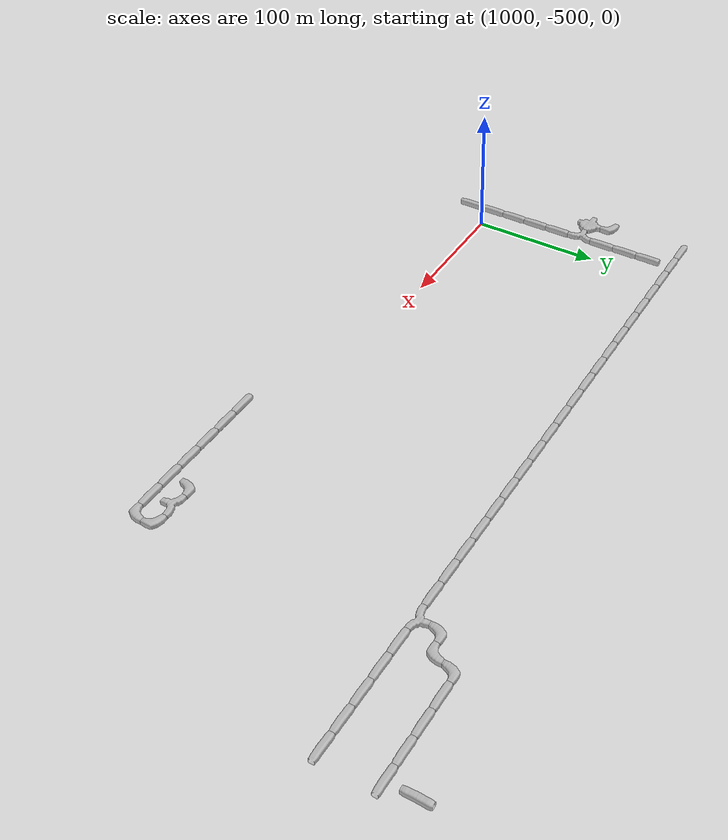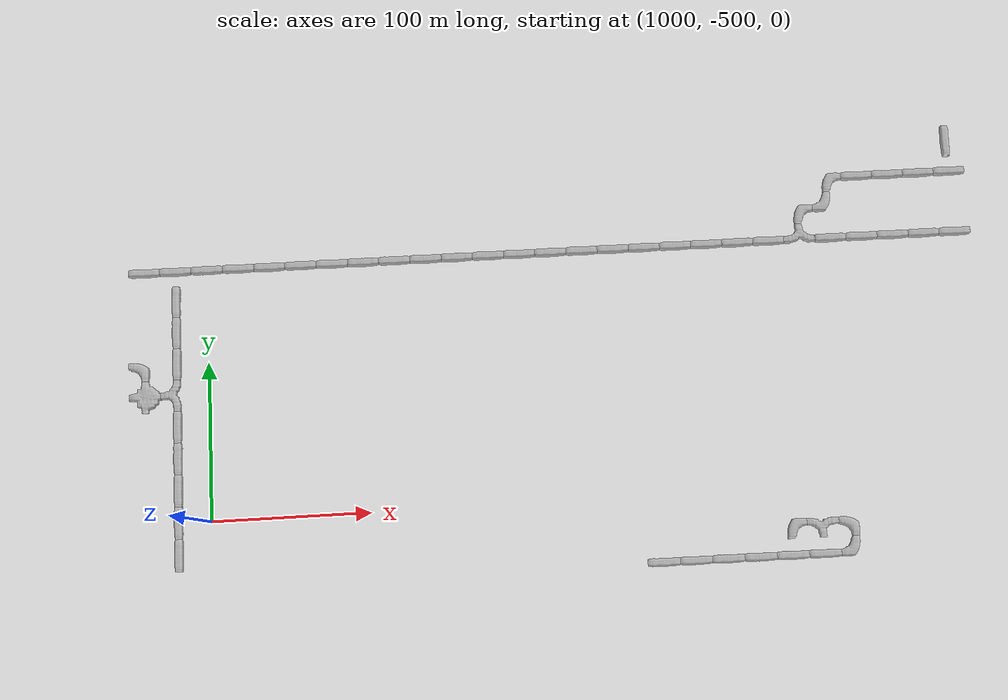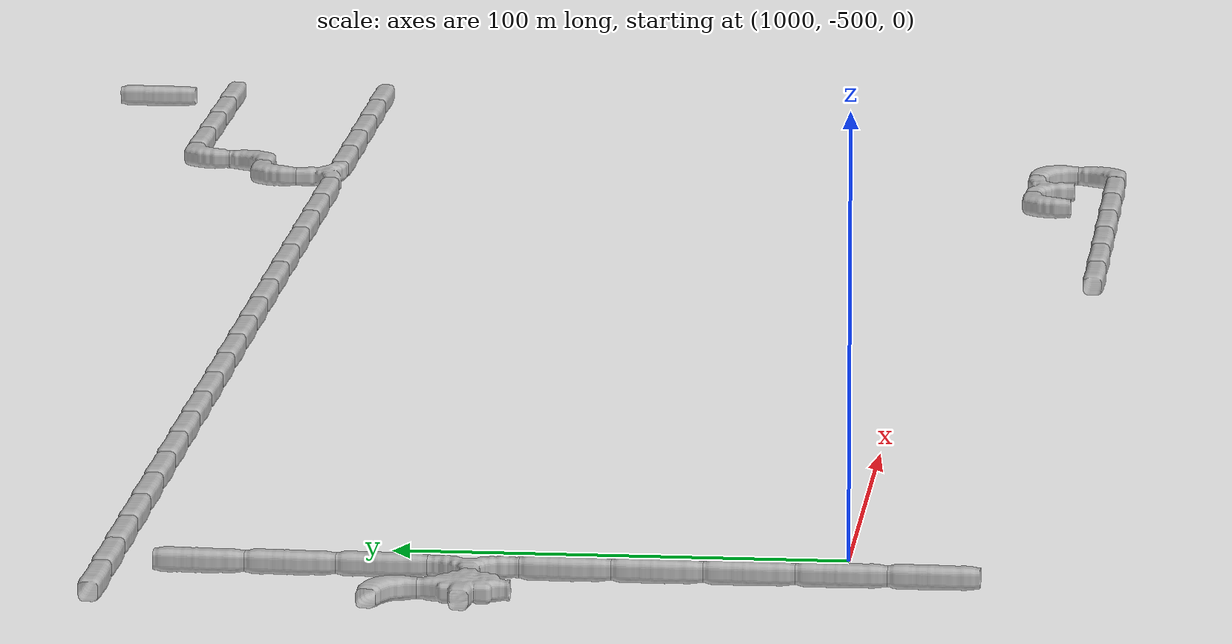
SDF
<sdf version="1.6">
 <world name="cave_32000_8">
  <include>
   <static>true</static>
   <name>cave_48_-17</name>
   <pose>960 -340 0 0 0 1.5707963267948966</pose>
   <uri>model://cave_straight_20m</uri>
  </include>
  <include>
   <static>true</static>
   <name>cave_49_-17</name>
   <pose>980 -340 0 0 0 1.5707963267948966</pose>
   <uri>model://cave_straight_20m</uri>
  </include>
  <include>
   <static>true</static>
   <name>cave_50_-17</name>
   <pose>1000 -340 0 0 0 1.5707963267948966</pose>
   <uri>model://cave_straight_20m</uri>
  </include>
  <include>
   <static>true</static>
   <name>cave_51_-17</name>
   <pose>1020 -340 0 0 0 1.5707963267948966</pose>
   <uri>model://cave_straight_20m</uri>
  </include>
  <include>
   <static>true</static>
   <name>cave_52_-17</name>
   <pose>1040 -340 0 0 0 1.5707963267948966</pose>
   <uri>model://cave_straight_20m</uri>
  </include>
  <include>
   <static>true</static>
   <name>cave_53_-17</name>
   <pose>1060 -340 0 0 0 1.5707963267948966</pose>
   <uri>model://cave_straight_20m</uri>
  </include>
  <include>
   <static>true</static>
   <name>cave_54_-17</name>
   <pose>1080 -340 0 0 0 1.5707963267948966</pose>
   <uri>model://cave_straight_20m</uri>
  </include>
  <include>
   <static>true</static>
   <name>cave_55_-17</name>
   <pose>1100 -340 0 0 0 1.5707963267948966</pose>
   <uri>model://cave_straight_20m</uri>
  </include>
  <include>
   <static>true</static>
   <name>cave_56_-17</name>
   <pose>1120 -340 0 0 0 1.5707963267948966</pose>
   <uri>model://cave_straight_20m</uri>
  </include>
  <include>
   <static>true</static>
   <name>cave_57_-17</name>
   <pose>1140 -340 0 0 0 1.5707963267948966</pose>
   <uri>model://cave_straight_20m</uri>
  </include>
  <include>
   <static>true</static>
   <name>cave_58_-17</name>
   <pose>1160 -340 0 0 0 1.5707963267948966</pose>
   <uri>model://cave_straight_20m</uri>
  </include>
  <include>
   <static>true</static>
   <name>cave_59_-17</name>
   <pose>1180 -340 0 0 0 1.5707963267948966</pose>
   <uri>model://cave_straight_20m</uri>
  </include>
  <include>
   <static>true</static>
   <name>cave_60_-17</name>
   <pose>1200 -340 0 0 0 1.5707963267948966</pose>
   <uri>model://cave_straight_20m</uri>
  </include>
  <include>
   <static>true</static>
   <name>cave_61_-17</name>
   <pose>1220 -340 0 0 0 1.5707963267948966</pose>
   <uri>model://cave_straight_20m</uri>
  </include>
  <include>
   <static>true</static>
   <name>cave_62_-17</name>
   <pose>1240 -340 0 0 0 1.5707963267948966</pose>
   <uri>model://cave_straight_20m</uri>
  </include>
  <include>
   <static>true</static>
   <name>cave_63_-17</name>
   <pose>1260 -340 0 0 0 1.5707963267948966</pose>
   <uri>model://cave_straight_20m</uri>
  </include>
  <include>
   <static>true</static>
   <name>cave_64_-17</name>
   <pose>1280 -340 0 0 0 1.5707963267948966</pose>
   <uri>model://cave_straight_20m</uri>
  </include>
  <include>
   <static>true</static>
   <name>cave_65_-17</name>
   <pose>1300 -340 0 0 0 1.5707963267948966</pose>
   <uri>model://cave_straight_20m</uri>
  </include>
  <include>
   <static>true</static>
   <name>cave_66_-17</name>
   <pose>1320 -340 0 0 0 1.5707963267948966</pose>
   <uri>model://cave_straight_20m</uri>
  </include>
  <include>
   <static>true</static>
   <name>cave_67_-17</name>
   <pose>1340 -340 0 0 0 1.5707963267948966</pose>
   <uri>model://cave_straight_20m</uri>
  </include>
  <include>
   <static>true</static>
   <name>cave_68_-17</name>
   <pose>1360 -340 0 0 0 1.5707963267948966</pose>
   <uri>model://cave_straight_20m</uri>
  </include>
  <include>
   <static>true</static>
   <name>cave_69_-17</name>
   <pose>1380 -340 0 0 0 0.0</pose>
   <uri>model://cave_3way_20m</uri>
  </include>
  <include>
   <static>true</static>
   <name>cave_70_-17</name>
   <pose>1400 -340 0 0 0 1.5707963267948966</pose>
   <uri>model://cave_straight_20m</uri>
  </include>
  <include>
   <static>true</static>
   <name>cave_71_-17</name>
   <pose>1420 -340 0 0 0 1.5707963267948966</pose>
   <uri>model://cave_straight_20m</uri>
  </include>
  <include>
   <static>true</static>
   <name>cave_72_-17</name>
   <pose>1440 -340 0 0 0 1.5707963267948966</pose>
   <uri>model://cave_straight_20m</uri>
  </include>
  <include>
   <static>true</static>
   <name>cave_73_-17</name>
   <pose>1460 -340 0 0 0 1.5707963267948966</pose>
   <uri>model://cave_straight_20m</uri>
  </include>
  <include>
   <static>true</static>
   <name>cave_74_-17</name>
   <pose>1480 -340 0 0 0 1.5707963267948966</pose>
   <uri>model://cave_straight_20m</uri>
  </include>
  <include>
   <static>true</static>
   <name>cave_69_-16</name>
   <pose>1380 -320 0 0 0 -1.5707963267948966</pose>
   <uri>model://cave_L_20m</uri>
  </include>
  <include>
   <static>true</static>
   <name>cave_70_-16</name>
   <pose>1400 -320 0 0 0 1.5707963267948966</pose>
   <uri>model://cave_L_20m</uri>
  </include>
  <include>
   <static>true</static>
   <name>cave_70_-15</name>
   <pose>1400 -300 0 0 0 -1.5707963267948966</pose>
   <uri>model://cave_L_20m</uri>
  </include>
  <include>
   <static>true</static>
   <name>cave_71_-15</name>
   <pose>1420 -300 0 0 0 1.5707963267948966</pose>
   <uri>model://cave_straight_20m</uri>
  </include>
  <include>
   <static>true</static>
   <name>cave_72_-15</name>
   <pose>1440 -300 0 0 0 1.5707963267948966</pose>
   <uri>model://cave_straight_20m</uri>
  </include>
  <include>
   <static>true</static>
   <name>cave_73_-15</name>
   <pose>1460 -300 0 0 0 1.5707963267948966</pose>
   <uri>model://cave_straight_20m</uri>
  </include>
  <include>
   <static>true</static>
   <name>cave_74_-15</name>
   <pose>1480 -300 0 0 0 1.5707963267948966</pose>
   <uri>model://cave_straight_20m</uri>
  </include>
  <include>
   <static>true</static>
   <name>cave_74_-14</name>
   <pose>1480 -280 0 0 0 0.0</pose>
   <uri>model://cave_straight_20m</uri>
  </include>
  <include>
   <static>true</static>
   <name>cave_48_-20</name>
   <pose>960 -400 0 0 0 3.141592653589793</pose>
   <uri>model://cave_L_20m</uri>
  </include>
  <include>
   <static>true</static>
   <name>cave_48_-21</name>
   <pose>960 -420 0 0 0 -1.5707963267948966</pose>
   <uri>model://cave_4way_20m</uri>
  </include>
  <include>
   <static>true</static>
   <name>cave_49_-21</name>
   <pose>980 -420 0 0 0 1.5707963267948966</pose>
   <uri>model://cave_3way_20m</uri>
  </include>
  <include>
   <static>true</static>
   <name>cave_49_-22</name>
   <pose>980 -440 0 0 0 0.0</pose>
   <uri>model://cave_straight_20m</uri>
  </include>
  <include>
   <static>true</static>
   <name>cave_49_-23</name>
   <pose>980 -460 0 0 0 0.0</pose>
   <uri>model://cave_straight_20m</uri>
  </include>
  <include>
   <static>true</static>
   <name>cave_49_-24</name>
   <pose>980 -480 0 0 0 0.0</pose>
   <uri>model://cave_straight_20m</uri>
  </include>
  <include>
   <static>true</static>
   <name>cave_49_-25</name>
   <pose>980 -500 0 0 0 0.0</pose>
   <uri>model://cave_straight_20m</uri>
  </include>
  <include>
   <static>true</static>
   <name>cave_49_-26</name>
   <pose>980 -520 0 0 0 0.0</pose>
   <uri>model://cave_straight_20m</uri>
  </include>
  <include>
   <static>true</static>
   <name>cave_64_-27</name>
   <pose>1280 -540 0 0 0 1.5707963267948966</pose>
   <uri>model://cave_straight_20m</uri>
  </include>
  <include>
   <static>true</static>
   <name>cave_65_-27</name>
   <pose>1300 -540 0 0 0 1.5707963267948966</pose>
   <uri>model://cave_straight_20m</uri>
  </include>
  <include>
   <static>true</static>
   <name>cave_66_-27</name>
   <pose>1320 -540 0 0 0 1.5707963267948966</pose>
   <uri>model://cave_straight_20m</uri>
  </include>
  <include>
   <static>true</static>
   <name>cave_67_-27</name>
   <pose>1340 -540 0 0 0 1.5707963267948966</pose>
   <uri>model://cave_straight_20m</uri>
  </include>
  <include>
   <static>true</static>
   <name>cave_68_-27</name>
   <pose>1360 -540 0 0 0 1.5707963267948966</pose>
   <uri>model://cave_straight_20m</uri>
  </include>
  <include>
   <static>true</static>
   <name>cave_69_-27</name>
   <pose>1380 -540 0 0 0 1.5707963267948966</pose>
   <uri>model://cave_straight_20m</uri>
  </include>
  <include>
   <static>true</static>
   <name>cave_70_-27</name>
   <pose>1400 -540 0 0 0 1.5707963267948966</pose>
   <uri>model://cave_L_20m</uri>
  </include>
  <include>
   <static>true</static>
   <name>cave_70_-26</name>
   <pose>1400 -520 0 0 0 3.141592653589793</pose>
   <uri>model://cave_L_20m</uri>
  </include>
  <include>
   <static>true</static>
   <name>cave_69_-26</name>
   <pose>1380 -520 0 0 0 3.141592653589793</pose>
   <uri>model://cave_3way_20m</uri>
  </include>
  <include>
   <static>true</static>
   <name>cave_68_-26</name>
   <pose>1360 -520 0 0 0 -1.5707963267948966</pose>
   <uri>model://cave_L_20m</uri>
  </include>
  <include>
   <static>true</static>
   <name>cave_49_-20</name>
   <pose>980 -400 0 0 0 0.0</pose>
   <uri>model://cave_straight_20m</uri>
  </include>
  <include>
   <static>true</static>
   <name>cave_49_-19</name>
   <pose>980 -380 0 0 0 0.0</pose>
   <uri>model://cave_straight_20m</uri>
  </include>
  <include>
   <static>true</static>
   <name>cave_49_-18</name>
   <pose>980 -360 0 0 0 0.0</pose>
   <uri>model://cave_straight_20m</uri>
  </include>
 </world>
</sdf>
